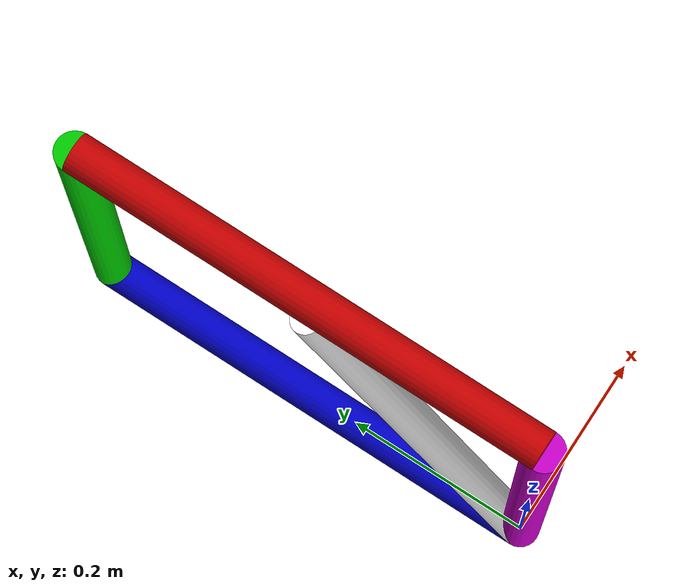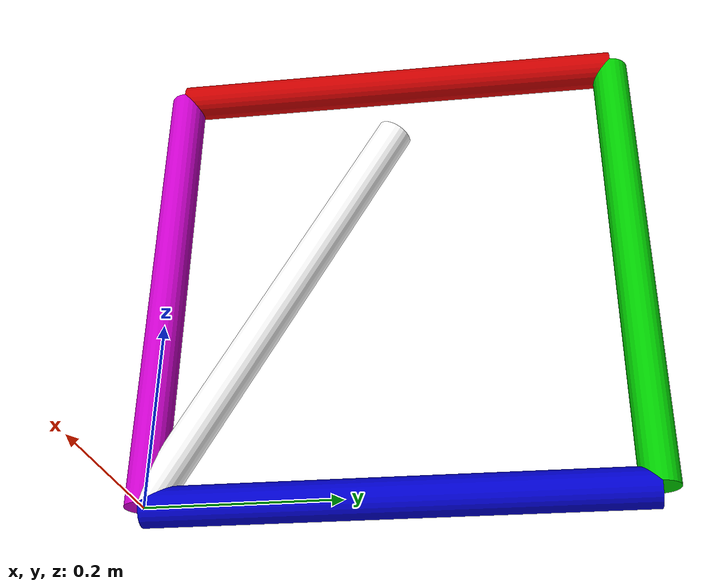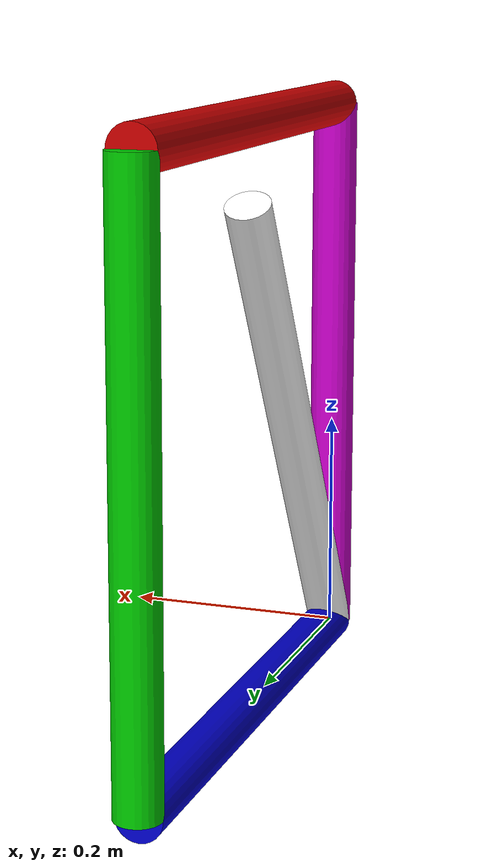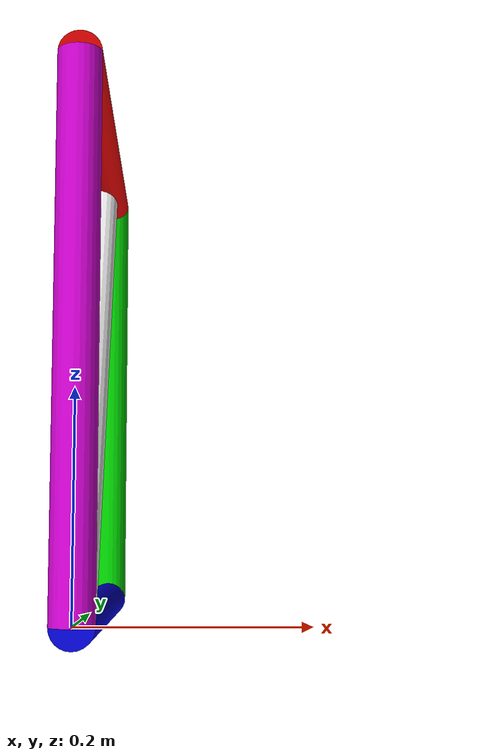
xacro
<?xml version="1.0"?>
<robot xmlns:xacro="http://www.ros.org/wiki/xacro" name="four_bar_elevator">
    <xacro:property name="theta" value="${pi/6}"/>
    <xacro:property name="L" value=".5"/>

    <link name="base_link">
    </link>

    <link name="four_bar_base">
        <visual>
            <origin xyz="0 0.25 0" rpy="1.57 0 0" />
            <geometry>
                <cylinder radius="0.02" length="0.5" />
            </geometry>
            <material name="blue">
                <color rgba="0 0 .8 1" />
            </material>
        </visual>
    </link>

    <joint name="joint0" type="revolute">
        <parent link="four_bar_base"/>
        <child link="link1"/>
        <origin xyz="0 0 0" rpy="0 0 0" />
        <axis xyz="1 0 0" />
        <limit lower="-1.57" upper="1.57" effort="0.5293" velocity="6.159937255" />
    </joint>

    <link name="link1">
        <visual>
            <origin xyz="0 0 0.25" rpy="0 0 0" />
            <geometry>
                <cylinder radius="0.02" length="0.5" />
            </geometry>
            <material name="yellow">
                <color rgba=".8 0 .8 1" />
            </material>
        </visual>
    </link>

    <joint name="joint1" type="revolute">
        <parent link="four_bar_base"/>
        <child link="link2"/>
        <origin xyz="0 0.5 0" rpy="0 0 0" />
        <axis xyz="1 0 0" />
        <limit lower="-1.57" upper="1.57" effort="0.5293" velocity="6.159937255" />
        <mimic joint="joint0" multiplier="1" offset="0" />
    </joint>

    <link name="link2">
        <visual>
            <origin xyz="0 0 0.25" rpy="0 0 0" />
            <geometry>
                <cylinder radius="0.02" length="0.5" />
            </geometry>
            <material name="green">
                <color rgba="0 .8 0 1" />
            </material>
        </visual>
    </link>

    <joint name="joint2" type="revolute">
        <parent link="link1"/>
        <child link="link3"/>
        <origin xyz="0 0 0.5" rpy="0 0 0" />
        <axis xyz="1 0 0" />
        <limit lower="-1.57" upper="1.57" effort="0.5293" velocity="6.159937255" />
        <mimic joint="joint0" multiplier="-1" offset="0" />
    </joint>

    <link name="link3">
        <visual>
            <origin xyz="0 0.25 0" rpy="1.57 0 0" />
            <geometry>
                <cylinder radius="0.02" length="0.5" />
            </geometry>
            <material name="red">
                <color rgba=".8 0 0 1" />
            </material>
        </visual>
    </link>

    <link name="elevator">
        <visual>
            <origin xyz="0 ${L*sin(theta)/2} ${L*cos(theta)/2}" rpy="0 ${theta} ${pi/2}"/>
            <geometry>
                <cylinder radius="0.02" length="${L}"/>
            </geometry>
            <material name="white">
                <color rgba="1 1 1 1"/>
            </material>
        </visual>
    </link>

    <joint name="elevator_joint" type="prismatic">
        <parent link="base_link"/>
        <child link="four_bar_base"/>
        <origin xyz="0 0 0" rpy="0 0 0"/>
        <axis xyz="0 ${theta} 1"/>
        <limit effort="1000.0" lower="0" upper="${L}" velocity="0.5"/>
    </joint>

    <joint name="elevator_to_base" type="fixed">
        <parent link="base_link"/>
        <child link="elevator"/>
    </joint>

</robot>
